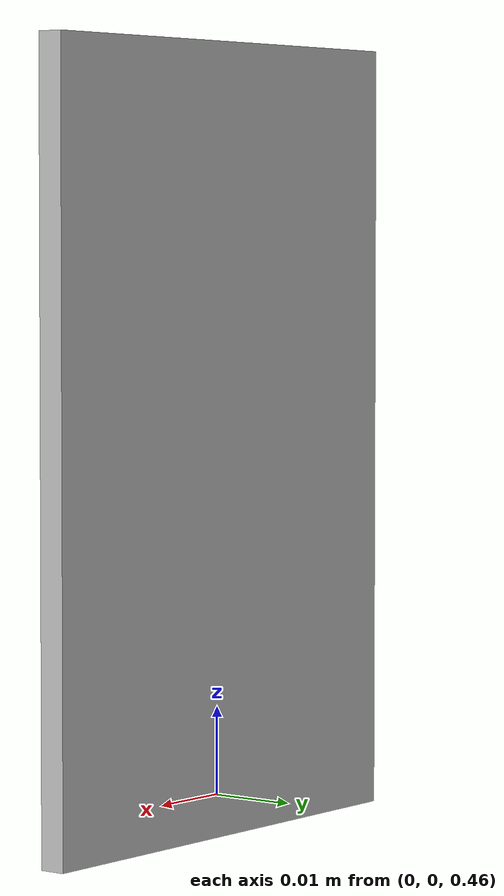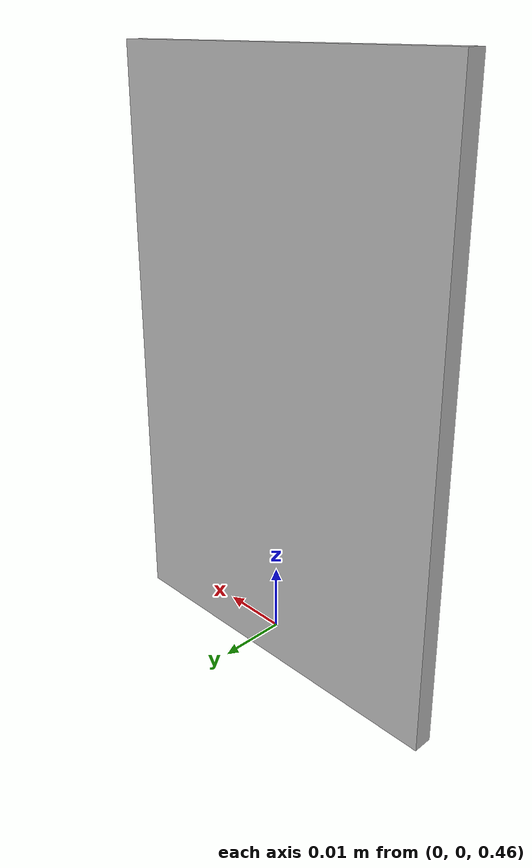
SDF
<?xml version='1.0'?>
<sdf version="1.4">
<model name="card">
  <pose>0 0 0.5 0 0 0</pose>
    <link name="link">
      <inertial>
        <mass>1.0</mass>
        <inertia>
          <ixx>0.083</ixx>
          <ixy>0.0</ixy>
          <ixz>0.0</ixz>
          <iyy>0.083</iyy>
          <iyz>0.0</iyz>
          <izz>0.083</izz>
        </inertia>
      </inertial>
      <collision name="collision">
        <geometry>
          <box>
            <size>0.057 0.003 0.089</size>
          </box>
        </geometry>
      </collision>
      <visual name="visual">
        <geometry>
          <box>
            <size>0.057 0.003 0.089</size>
          </box>
        </geometry>
      </visual>
    </link>
  </model>
</sdf>
